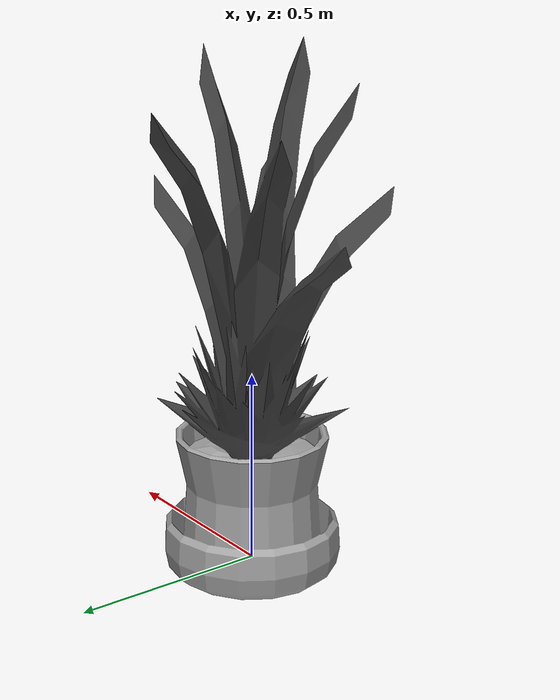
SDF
<?xml version='1.0'?>
<sdf version='1.6'>
  <model name="plant">
    <static>true</static>
    <link name="link">
	<visual name="visual">
        <geometry>
          <mesh>
            <uri>model://plant/plant.dae</uri>
          </mesh>
        </geometry>
      </visual>
      <collision name="collision">
              <geometry>
          <mesh>
            <uri>model://plant/plant.dae</uri>
          </mesh>
        </geometry>
      </collision>
    </link>
  </model>
</sdf>
